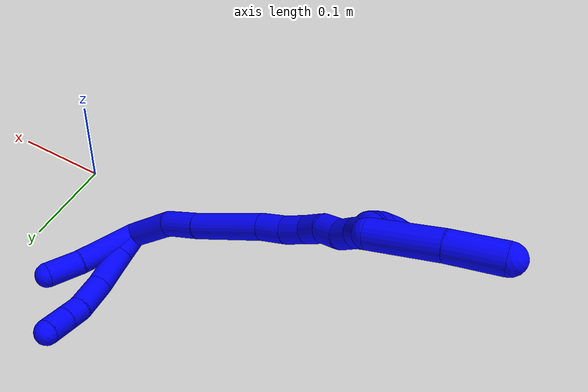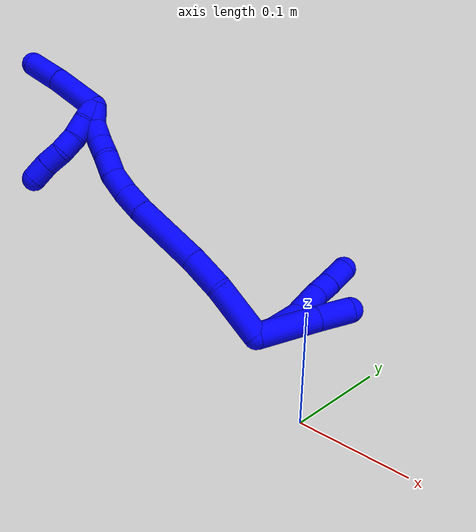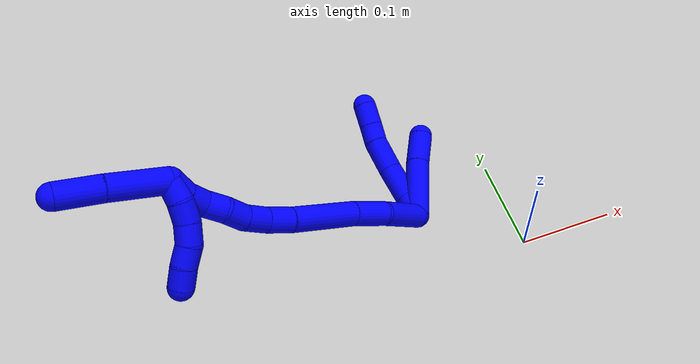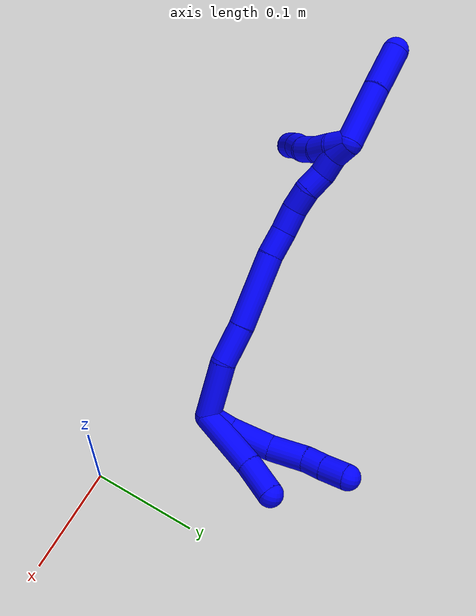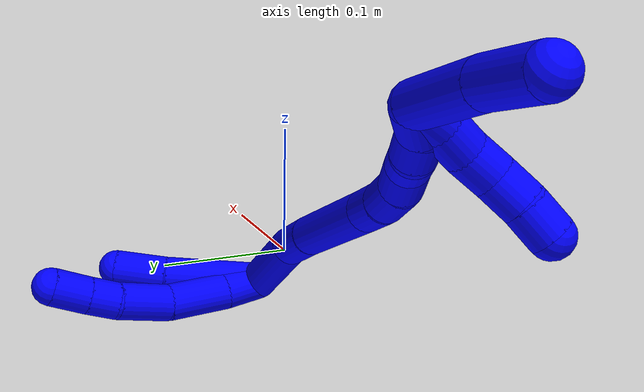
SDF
<sdf version="1.7">
 <world name="default">
  <model name="1">
   <static>0</static>
   <link name="1">
    <collision name="collision-cylinder-e_1_2_8">
     <pose>0.004239 0.011762 -0.002094 -1.74697 0.340959 -0.405361</pose>
     <geometry><cylinder><radius>0.0125</radius><length>0.025354</length></cylinder></geometry>
     <surface>
      <friction><ode><mu>1.16</mu><mu2>1.16</mu2><slip1>0</slip1><slip2>0</slip2></ode></friction>
      <contact><ode><kp>1e+06</kp><kd>1</kd><max_vel>0</max_vel><min_depth>0.001</min_depth></ode></contact>
     </surface>
    </collision>
    <visual name="visual-cylinder-e_1_2_8">
     <pose>0.004239 0.011762 -0.002094 -1.74697 0.340959 -0.405361</pose>
     <geometry><cylinder><radius>0.0125</radius><length>0.025354</length></cylinder></geometry>
     <material><ambient>0 0 1 1</ambient></material>
    </visual>
    <collision name="collision-cylinder-e_2_8_9">
     <pose>0.016435 0.043229 -0.004379 -1.58053 0.383754 -0.387415</pose>
     <geometry><cylinder><radius>0.0125</radius><length>0.042502</length></cylinder></geometry>
     <surface>
      <friction><ode><mu>1.16</mu><mu2>1.16</mu2><slip1>0</slip1><slip2>0</slip2></ode></friction>
      <contact><ode><kp>1e+06</kp><kd>1</kd><max_vel>0</max_vel><min_depth>0.001</min_depth></ode></contact>
     </surface>
    </collision>
    <visual name="visual-cylinder-e_2_8_9">
     <pose>0.016435 0.043229 -0.004379 -1.58053 0.383754 -0.387415</pose>
     <geometry><cylinder><radius>0.0125</radius><length>0.042502</length></cylinder></geometry>
     <material><ambient>0 0 1 1</ambient></material>
    </visual>
    <collision name="collision-cylinder-e_3_9_10">
     <pose>0.033536 0.078565 -0.001085 -1.35133 0.518812 -0.419175</pose>
     <geometry><cylinder><radius>0.0125</radius><length>0.036885</length></cylinder></geometry>
     <surface>
      <friction><ode><mu>1.16</mu><mu2>1.16</mu2><slip1>0</slip1><slip2>0</slip2></ode></friction>
      <contact><ode><kp>1e+06</kp><kd>1</kd><max_vel>0</max_vel><min_depth>0.001</min_depth></ode></contact>
     </surface>
    </collision>
    <visual name="visual-cylinder-e_3_9_10">
     <pose>0.033536 0.078565 -0.001085 -1.35133 0.518812 -0.419175</pose>
     <geometry><cylinder><radius>0.0125</radius><length>0.036885</length></cylinder></geometry>
     <material><ambient>0 0 1 1</ambient></material>
    </visual>
    <collision name="collision-cylinder-e_4_10_11">
     <pose>0.049275 0.101596 0.003753 -1.39026 0.719802 -0.608184</pose>
     <geometry><cylinder><radius>0.0125</radius><length>0.020007</length></cylinder></geometry>
     <surface>
      <friction><ode><mu>1.16</mu><mu2>1.16</mu2><slip1>0</slip1><slip2>0</slip2></ode></friction>
      <contact><ode><kp>1e+06</kp><kd>1</kd><max_vel>0</max_vel><min_depth>0.001</min_depth></ode></contact>
     </surface>
    </collision>
    <visual name="visual-cylinder-e_4_10_11">
     <pose>0.049275 0.101596 0.003753 -1.39026 0.719802 -0.608184</pose>
     <geometry><cylinder><radius>0.0125</radius><length>0.020007</length></cylinder></geometry>
     <material><ambient>0 0 1 1</ambient></material>
    </visual>
    <collision name="collision-cylinder-e_5_11_6">
     <pose>0.06421 0.118144 0.007584 -1.306 0.721584 -0.561968</pose>
     <geometry><cylinder><radius>0.0125</radius><length>0.025252</length></cylinder></geometry>
     <surface>
      <friction><ode><mu>1.16</mu><mu2>1.16</mu2><slip1>0</slip1><slip2>0</slip2></ode></friction>
      <contact><ode><kp>1e+06</kp><kd>1</kd><max_vel>0</max_vel><min_depth>0.001</min_depth></ode></contact>
     </surface>
    </collision>
    <visual name="visual-cylinder-e_5_11_6">
     <pose>0.06421 0.118144 0.007584 -1.306 0.721584 -0.561968</pose>
     <geometry><cylinder><radius>0.0125</radius><length>0.025252</length></cylinder></geometry>
     <material><ambient>0 0 1 1</ambient></material>
    </visual>
    <collision name="collision-cylinder-e_1_2_12">
     <pose>0.022543 0.021616 -0.007976 -1.92428 0.774484 -1.05893</pose>
     <geometry><cylinder><radius>0.0125</radius><length>0.06447</length></cylinder></geometry>
     <surface>
      <friction><ode><mu>1.16</mu><mu2>1.16</mu2><slip1>0</slip1><slip2>0</slip2></ode></friction>
      <contact><ode><kp>1e+06</kp><kd>1</kd><max_vel>0</max_vel><min_depth>0.001</min_depth></ode></contact>
     </surface>
    </collision>
    <visual name="visual-cylinder-e_1_2_12">
     <pose>0.022543 0.021616 -0.007976 -1.92428 0.774484 -1.05893</pose>
     <geometry><cylinder><radius>0.0125</radius><length>0.06447</length></cylinder></geometry>
     <material><ambient>0 0 1 1</ambient></material>
    </visual>
    <collision name="collision-cylinder-e_2_12_5">
     <pose>0.05853 0.053793 -0.020786 -2.00008 0.858298 -1.23842</pose>
     <geometry><cylinder><radius>0.0125</radius><length>0.03553</length></cylinder></geometry>
     <surface>
      <friction><ode><mu>1.16</mu><mu2>1.16</mu2><slip1>0</slip1><slip2>0</slip2></ode></friction>
      <contact><ode><kp>1e+06</kp><kd>1</kd><max_vel>0</max_vel><min_depth>0.001</min_depth></ode></contact>
     </surface>
    </collision>
    <visual name="visual-cylinder-e_2_12_5">
     <pose>0.05853 0.053793 -0.020786 -2.00008 0.858298 -1.23842</pose>
     <geometry><cylinder><radius>0.0125</radius><length>0.03553</length></cylinder></geometry>
     <material><ambient>0 0 1 1</ambient></material>
    </visual>
    <collision name="collision-cylinder-e_1_2_13">
     <pose>-0.003283 -0.000558 0.028062 0.019872 -0.116432 -0.001158</pose>
     <geometry><cylinder><radius>0.0125</radius><length>0.056517</length></cylinder></geometry>
     <surface>
      <friction><ode><mu>1.16</mu><mu2>1.16</mu2><slip1>0</slip1><slip2>0</slip2></ode></friction>
      <contact><ode><kp>1e+06</kp><kd>1</kd><max_vel>0</max_vel><min_depth>0.001</min_depth></ode></contact>
     </surface>
    </collision>
    <visual name="visual-cylinder-e_1_2_13">
     <pose>-0.003283 -0.000558 0.028062 0.019872 -0.116432 -0.001158</pose>
     <geometry><cylinder><radius>0.0125</radius><length>0.056517</length></cylinder></geometry>
     <material><ambient>0 0 1 1</ambient></material>
    </visual>
    <collision name="collision-cylinder-e_2_13_14">
     <pose>-0.011938 0.002782 0.074077 -0.213772 -0.284503 0.030731</pose>
     <geometry><cylinder><radius>0.0125</radius><length>0.038283</length></cylinder></geometry>
     <surface>
      <friction><ode><mu>1.16</mu><mu2>1.16</mu2><slip1>0</slip1><slip2>0</slip2></ode></friction>
      <contact><ode><kp>1e+06</kp><kd>1</kd><max_vel>0</max_vel><min_depth>0.001</min_depth></ode></contact>
     </surface>
    </collision>
    <visual name="visual-cylinder-e_2_13_14">
     <pose>-0.011938 0.002782 0.074077 -0.213772 -0.284503 0.030731</pose>
     <geometry><cylinder><radius>0.0125</radius><length>0.038283</length></cylinder></geometry>
     <material><ambient>0 0 1 1</ambient></material>
    </visual>
    <collision name="collision-cylinder-e_3_14_15">
     <pose>-0.029194 0.011231 0.126131 -0.13267 -0.332585 0.022299</pose>
     <geometry><cylinder><radius>0.0125</radius><length>0.072794</length></cylinder></geometry>
     <surface>
      <friction><ode><mu>1.16</mu><mu2>1.16</mu2><slip1>0</slip1><slip2>0</slip2></ode></friction>
      <contact><ode><kp>1e+06</kp><kd>1</kd><max_vel>0</max_vel><min_depth>0.001</min_depth></ode></contact>
     </surface>
    </collision>
    <visual name="visual-cylinder-e_3_14_15">
     <pose>-0.029194 0.011231 0.126131 -0.13267 -0.332585 0.022299</pose>
     <geometry><cylinder><radius>0.0125</radius><length>0.072794</length></cylinder></geometry>
     <material><ambient>0 0 1 1</ambient></material>
    </visual>
    <collision name="collision-cylinder-e_4_15_16">
     <pose>-0.044827 0.018952 0.172315 -0.256592 -0.291621 0.037885</pose>
     <geometry><cylinder><radius>0.0125</radius><length>0.026087</length></cylinder></geometry>
     <surface>
      <friction><ode><mu>1.16</mu><mu2>1.16</mu2><slip1>0</slip1><slip2>0</slip2></ode></friction>
      <contact><ode><kp>1e+06</kp><kd>1</kd><max_vel>0</max_vel><min_depth>0.001</min_depth></ode></contact>
     </surface>
    </collision>
    <visual name="visual-cylinder-e_4_15_16">
     <pose>-0.044827 0.018952 0.172315 -0.256592 -0.291621 0.037885</pose>
     <geometry><cylinder><radius>0.0125</radius><length>0.026087</length></cylinder></geometry>
     <material><ambient>0 0 1 1</ambient></material>
    </visual>
    <collision name="collision-cylinder-e_5_16_17">
     <pose>-0.050407 0.024088 0.195935 -0.168768 -0.155114 0.013146</pose>
     <geometry><cylinder><radius>0.0125</radius><length>0.023689</length></cylinder></geometry>
     <surface>
      <friction><ode><mu>1.16</mu><mu2>1.16</mu2><slip1>0</slip1><slip2>0</slip2></ode></friction>
      <contact><ode><kp>1e+06</kp><kd>1</kd><max_vel>0</max_vel><min_depth>0.001</min_depth></ode></contact>
     </surface>
    </collision>
    <visual name="visual-cylinder-e_5_16_17">
     <pose>-0.050407 0.024088 0.195935 -0.168768 -0.155114 0.013146</pose>
     <geometry><cylinder><radius>0.0125</radius><length>0.023689</length></cylinder></geometry>
     <material><ambient>0 0 1 1</ambient></material>
    </visual>
    <collision name="collision-cylinder-e_6_17_18">
     <pose>-0.05132 0.028536 0.218058 -0.230262 0.08415 -0.009737</pose>
     <geometry><cylinder><radius>0.0125</radius><length>0.021826</length></cylinder></geometry>
     <surface>
      <friction><ode><mu>1.16</mu><mu2>1.16</mu2><slip1>0</slip1><slip2>0</slip2></ode></friction>
      <contact><ode><kp>1e+06</kp><kd>1</kd><max_vel>0</max_vel><min_depth>0.001</min_depth></ode></contact>
     </surface>
    </collision>
    <visual name="visual-cylinder-e_6_17_18">
     <pose>-0.05132 0.028536 0.218058 -0.230262 0.08415 -0.009737</pose>
     <geometry><cylinder><radius>0.0125</radius><length>0.021826</length></cylinder></geometry>
     <material><ambient>0 0 1 1</ambient></material>
    </visual>
    <collision name="collision-cylinder-e_7_18_19">
     <pose>-0.051288 0.035727 0.2378 -0.475183 -0.085799 0.02079</pose>
     <geometry><cylinder><radius>0.0125</radius><length>0.020665</length></cylinder></geometry>
     <surface>
      <friction><ode><mu>1.16</mu><mu2>1.16</mu2><slip1>0</slip1><slip2>0</slip2></ode></friction>
      <contact><ode><kp>1e+06</kp><kd>1</kd><max_vel>0</max_vel><min_depth>0.001</min_depth></ode></contact>
     </surface>
    </collision>
    <visual name="visual-cylinder-e_7_18_19">
     <pose>-0.051288 0.035727 0.2378 -0.475183 -0.085799 0.02079</pose>
     <geometry><cylinder><radius>0.0125</radius><length>0.020665</length></cylinder></geometry>
     <material><ambient>0 0 1 1</ambient></material>
    </visual>
    <collision name="collision-cylinder-e_8_19_20">
     <pose>-0.051 0.042459 0.256703 -0.204518 0.117341 -0.012055</pose>
     <geometry><cylinder><radius>0.0125</radius><length>0.020052</length></cylinder></geometry>
     <surface>
      <friction><ode><mu>1.16</mu><mu2>1.16</mu2><slip1>0</slip1><slip2>0</slip2></ode></friction>
      <contact><ode><kp>1e+06</kp><kd>1</kd><max_vel>0</max_vel><min_depth>0.001</min_depth></ode></contact>
     </surface>
    </collision>
    <visual name="visual-cylinder-e_8_19_20">
     <pose>-0.051 0.042459 0.256703 -0.204518 0.117341 -0.012055</pose>
     <geometry><cylinder><radius>0.0125</radius><length>0.020052</length></cylinder></geometry>
     <material><ambient>0 0 1 1</ambient></material>
    </visual>
    <collision name="collision-cylinder-e_9_20_1">
     <pose>-0.046013 0.048342 0.274904 -0.428438 0.38938 -0.085747</pose>
     <geometry><cylinder><radius>0.0125</radius><length>0.020087</length></cylinder></geometry>
     <surface>
      <friction><ode><mu>1.16</mu><mu2>1.16</mu2><slip1>0</slip1><slip2>0</slip2></ode></friction>
      <contact><ode><kp>1e+06</kp><kd>1</kd><max_vel>0</max_vel><min_depth>0.001</min_depth></ode></contact>
     </surface>
    </collision>
    <visual name="visual-cylinder-e_9_20_1">
     <pose>-0.046013 0.048342 0.274904 -0.428438 0.38938 -0.085747</pose>
     <geometry><cylinder><radius>0.0125</radius><length>0.020087</length></cylinder></geometry>
     <material><ambient>0 0 1 1</ambient></material>
    </visual>
    <collision name="collision-cylinder-e_1_1_21">
     <pose>-0.048289 0.045934 0.278494 2.23058 -0.654623 -1.21216</pose>
     <geometry><cylinder><radius>0.0125</radius><length>0.02</length></cylinder></geometry>
     <surface>
      <friction><ode><mu>1.16</mu><mu2>1.16</mu2><slip1>0</slip1><slip2>0</slip2></ode></friction>
      <contact><ode><kp>1e+06</kp><kd>1</kd><max_vel>0</max_vel><min_depth>0.001</min_depth></ode></contact>
     </surface>
    </collision>
    <visual name="visual-cylinder-e_1_1_21">
     <pose>-0.048289 0.045934 0.278494 2.23058 -0.654623 -1.21216</pose>
     <geometry><cylinder><radius>0.0125</radius><length>0.02</length></cylinder></geometry>
     <material><ambient>0 0 1 1</ambient></material>
    </visual>
    <collision name="collision-cylinder-e_2_21_22">
     <pose>-0.061787 0.035141 0.268669 2.40224 -0.834455 -1.70484</pose>
     <geometry><cylinder><radius>0.0125</radius><length>0.02</length></cylinder></geometry>
     <surface>
      <friction><ode><mu>1.16</mu><mu2>1.16</mu2><slip1>0</slip1><slip2>0</slip2></ode></friction>
      <contact><ode><kp>1e+06</kp><kd>1</kd><max_vel>0</max_vel><min_depth>0.001</min_depth></ode></contact>
     </surface>
    </collision>
    <visual name="visual-cylinder-e_2_21_22">
     <pose>-0.061787 0.035141 0.268669 2.40224 -0.834455 -1.70484</pose>
     <geometry><cylinder><radius>0.0125</radius><length>0.02</length></cylinder></geometry>
     <material><ambient>0 0 1 1</ambient></material>
    </visual>
    <collision name="collision-cylinder-e_3_22_23">
     <pose>-0.077812 0.026596 0.260607 2.2277 -1.03833 -1.72065</pose>
     <geometry><cylinder><radius>0.0125</radius><length>0.02</length></cylinder></geometry>
     <surface>
      <friction><ode><mu>1.16</mu><mu2>1.16</mu2><slip1>0</slip1><slip2>0</slip2></ode></friction>
      <contact><ode><kp>1e+06</kp><kd>1</kd><max_vel>0</max_vel><min_depth>0.001</min_depth></ode></contact>
     </surface>
    </collision>
    <visual name="visual-cylinder-e_3_22_23">
     <pose>-0.077812 0.026596 0.260607 2.2277 -1.03833 -1.72065</pose>
     <geometry><cylinder><radius>0.0125</radius><length>0.02</length></cylinder></geometry>
     <material><ambient>0 0 1 1</ambient></material>
    </visual>
    <collision name="collision-cylinder-e_4_23_24">
     <pose>-0.096212 0.020871 0.256346 2.16879 -1.36305 -1.98624</pose>
     <geometry><cylinder><radius>0.0125</radius><length>0.02</length></cylinder></geometry>
     <surface>
      <friction><ode><mu>1.16</mu><mu2>1.16</mu2><slip1>0</slip1><slip2>0</slip2></ode></friction>
      <contact><ode><kp>1e+06</kp><kd>1</kd><max_vel>0</max_vel><min_depth>0.001</min_depth></ode></contact>
     </surface>
    </collision>
    <visual name="visual-cylinder-e_4_23_24">
     <pose>-0.096212 0.020871 0.256346 2.16879 -1.36305 -1.98624</pose>
     <geometry><cylinder><radius>0.0125</radius><length>0.02</length></cylinder></geometry>
     <material><ambient>0 0 1 1</ambient></material>
    </visual>
    <collision name="collision-cylinder-e_5_24_4">
     <pose>-0.115532 0.017561 0.252631 2.5804 -1.26441 -2.3919</pose>
     <geometry><cylinder><radius>0.0125</radius><length>0.02</length></cylinder></geometry>
     <surface>
      <friction><ode><mu>1.16</mu><mu2>1.16</mu2><slip1>0</slip1><slip2>0</slip2></ode></friction>
      <contact><ode><kp>1e+06</kp><kd>1</kd><max_vel>0</max_vel><min_depth>0.001</min_depth></ode></contact>
     </surface>
    </collision>
    <visual name="visual-cylinder-e_5_24_4">
     <pose>-0.115532 0.017561 0.252631 2.5804 -1.26441 -2.3919</pose>
     <geometry><cylinder><radius>0.0125</radius><length>0.02</length></cylinder></geometry>
     <material><ambient>0 0 1 1</ambient></material>
    </visual>
    <collision name="collision-cylinder-e_1_1_25">
     <pose>-0.054392 0.05852 0.308636 -0.244922 -0.437624 0.054724</pose>
     <geometry><cylinder><radius>0.0125</radius><length>0.057538</length></cylinder></geometry>
     <surface>
      <friction><ode><mu>1.16</mu><mu2>1.16</mu2><slip1>0</slip1><slip2>0</slip2></ode></friction>
      <contact><ode><kp>1e+06</kp><kd>1</kd><max_vel>0</max_vel><min_depth>0.001</min_depth></ode></contact>
     </surface>
    </collision>
    <visual name="visual-cylinder-e_1_1_25">
     <pose>-0.054392 0.05852 0.308636 -0.244922 -0.437624 0.054724</pose>
     <geometry><cylinder><radius>0.0125</radius><length>0.057538</length></cylinder></geometry>
     <material><ambient>0 0 1 1</ambient></material>
    </visual>
    <collision name="collision-cylinder-e_2_25_3">
     <pose>-0.076765 0.07008 0.351795 -0.285177 -0.500086 0.073295</pose>
     <geometry><cylinder><radius>0.0125</radius><length>0.042462</length></cylinder></geometry>
     <surface>
      <friction><ode><mu>1.16</mu><mu2>1.16</mu2><slip1>0</slip1><slip2>0</slip2></ode></friction>
      <contact><ode><kp>1e+06</kp><kd>1</kd><max_vel>0</max_vel><min_depth>0.001</min_depth></ode></contact>
     </surface>
    </collision>
    <visual name="visual-cylinder-e_2_25_3">
     <pose>-0.076765 0.07008 0.351795 -0.285177 -0.500086 0.073295</pose>
     <geometry><cylinder><radius>0.0125</radius><length>0.042462</length></cylinder></geometry>
     <material><ambient>0 0 1 1</ambient></material>
    </visual>
    <collision name="collision-sphere-3">
     <pose>-0.086945 0.075322 0.369674 0 -0 0</pose>
     <geometry><sphere><radius>0.0125</radius></sphere></geometry>
     <surface>
      <friction><ode><mu>1.16</mu><mu2>1.16</mu2><slip1>0</slip1><slip2>0</slip2></ode></friction>
      <contact><ode><kp>1e+06</kp><kd>1</kd><max_vel>0</max_vel><min_depth>0.001</min_depth></ode></contact>
     </surface>
    </collision>
    <visual name="visual-sphere-3">
     <pose>-0.086945 0.075322 0.369674 0 -0 0</pose>
     <geometry><sphere><radius>0.0125</radius></sphere></geometry>
     <material><ambient>0 0 1 1</ambient></material>
    </visual>
    <collision name="collision-sphere-25">
     <pose>-0.066584 0.064839 0.333917 0 -0 0</pose>
     <geometry><sphere><radius>0.0125</radius></sphere></geometry>
     <surface>
      <friction><ode><mu>1.16</mu><mu2>1.16</mu2><slip1>0</slip1><slip2>0</slip2></ode></friction>
      <contact><ode><kp>1e+06</kp><kd>1</kd><max_vel>0</max_vel><min_depth>0.001</min_depth></ode></contact>
     </surface>
    </collision>
    <visual name="visual-sphere-25">
     <pose>-0.066584 0.064839 0.333917 0 -0 0</pose>
     <geometry><sphere><radius>0.0125</radius></sphere></geometry>
     <material><ambient>0 0 1 1</ambient></material>
    </visual>
    <collision name="collision-sphere-4">
     <pose>-0.125066 0.015956 0.250077 0 -0 0</pose>
     <geometry><sphere><radius>0.0125</radius></sphere></geometry>
     <surface>
      <friction><ode><mu>1.16</mu><mu2>1.16</mu2><slip1>0</slip1><slip2>0</slip2></ode></friction>
      <contact><ode><kp>1e+06</kp><kd>1</kd><max_vel>0</max_vel><min_depth>0.001</min_depth></ode></contact>
     </surface>
    </collision>
    <visual name="visual-sphere-4">
     <pose>-0.125066 0.015956 0.250077 0 -0 0</pose>
     <geometry><sphere><radius>0.0125</radius></sphere></geometry>
     <material><ambient>0 0 1 1</ambient></material>
    </visual>
    <collision name="collision-sphere-24">
     <pose>-0.105997 0.019166 0.255184 0 -0 0</pose>
     <geometry><sphere><radius>0.0125</radius></sphere></geometry>
     <surface>
      <friction><ode><mu>1.16</mu><mu2>1.16</mu2><slip1>0</slip1><slip2>0</slip2></ode></friction>
      <contact><ode><kp>1e+06</kp><kd>1</kd><max_vel>0</max_vel><min_depth>0.001</min_depth></ode></contact>
     </surface>
    </collision>
    <visual name="visual-sphere-24">
     <pose>-0.105997 0.019166 0.255184 0 -0 0</pose>
     <geometry><sphere><radius>0.0125</radius></sphere></geometry>
     <material><ambient>0 0 1 1</ambient></material>
    </visual>
    <collision name="collision-sphere-23">
     <pose>-0.086427 0.022576 0.257507 0 -0 0</pose>
     <geometry><sphere><radius>0.0125</radius></sphere></geometry>
     <surface>
      <friction><ode><mu>1.16</mu><mu2>1.16</mu2><slip1>0</slip1><slip2>0</slip2></ode></friction>
      <contact><ode><kp>1e+06</kp><kd>1</kd><max_vel>0</max_vel><min_depth>0.001</min_depth></ode></contact>
     </surface>
    </collision>
    <visual name="visual-sphere-23">
     <pose>-0.086427 0.022576 0.257507 0 -0 0</pose>
     <geometry><sphere><radius>0.0125</radius></sphere></geometry>
     <material><ambient>0 0 1 1</ambient></material>
    </visual>
    <collision name="collision-sphere-22">
     <pose>-0.069196 0.030616 0.263707 0 -0 0</pose>
     <geometry><sphere><radius>0.0125</radius></sphere></geometry>
     <surface>
      <friction><ode><mu>1.16</mu><mu2>1.16</mu2><slip1>0</slip1><slip2>0</slip2></ode></friction>
      <contact><ode><kp>1e+06</kp><kd>1</kd><max_vel>0</max_vel><min_depth>0.001</min_depth></ode></contact>
     </surface>
    </collision>
    <visual name="visual-sphere-22">
     <pose>-0.069196 0.030616 0.263707 0 -0 0</pose>
     <geometry><sphere><radius>0.0125</radius></sphere></geometry>
     <material><ambient>0 0 1 1</ambient></material>
    </visual>
    <collision name="collision-sphere-21">
     <pose>-0.054378 0.039666 0.273632 0 -0 0</pose>
     <geometry><sphere><radius>0.0125</radius></sphere></geometry>
     <surface>
      <friction><ode><mu>1.16</mu><mu2>1.16</mu2><slip1>0</slip1><slip2>0</slip2></ode></friction>
      <contact><ode><kp>1e+06</kp><kd>1</kd><max_vel>0</max_vel><min_depth>0.001</min_depth></ode></contact>
     </surface>
    </collision>
    <visual name="visual-sphere-21">
     <pose>-0.054378 0.039666 0.273632 0 -0 0</pose>
     <geometry><sphere><radius>0.0125</radius></sphere></geometry>
     <material><ambient>0 0 1 1</ambient></material>
    </visual>
    <collision name="collision-sphere-1">
     <pose>-0.0422 0.052202 0.283356 0 -0 0</pose>
     <geometry><sphere><radius>0.0125</radius></sphere></geometry>
     <surface>
      <friction><ode><mu>1.16</mu><mu2>1.16</mu2><slip1>0</slip1><slip2>0</slip2></ode></friction>
      <contact><ode><kp>1e+06</kp><kd>1</kd><max_vel>0</max_vel><min_depth>0.001</min_depth></ode></contact>
     </surface>
    </collision>
    <visual name="visual-sphere-1">
     <pose>-0.0422 0.052202 0.283356 0 -0 0</pose>
     <geometry><sphere><radius>0.0125</radius></sphere></geometry>
     <material><ambient>0 0 1 1</ambient></material>
    </visual>
    <collision name="collision-sphere-6">
     <pose>0.072551 0.127293 0.010065 0 -0 0</pose>
     <geometry><sphere><radius>0.0125</radius></sphere></geometry>
     <surface>
      <friction><ode><mu>1.16</mu><mu2>1.16</mu2><slip1>0</slip1><slip2>0</slip2></ode></friction>
      <contact><ode><kp>1e+06</kp><kd>1</kd><max_vel>0</max_vel><min_depth>0.001</min_depth></ode></contact>
     </surface>
    </collision>
    <visual name="visual-sphere-6">
     <pose>0.072551 0.127293 0.010065 0 -0 0</pose>
     <geometry><sphere><radius>0.0125</radius></sphere></geometry>
     <material><ambient>0 0 1 1</ambient></material>
    </visual>
    <collision name="collision-sphere-11">
     <pose>0.05587 0.108996 0.005103 0 -0 0</pose>
     <geometry><sphere><radius>0.0125</radius></sphere></geometry>
     <surface>
      <friction><ode><mu>1.16</mu><mu2>1.16</mu2><slip1>0</slip1><slip2>0</slip2></ode></friction>
      <contact><ode><kp>1e+06</kp><kd>1</kd><max_vel>0</max_vel><min_depth>0.001</min_depth></ode></contact>
     </surface>
    </collision>
    <visual name="visual-sphere-11">
     <pose>0.05587 0.108996 0.005103 0 -0 0</pose>
     <geometry><sphere><radius>0.0125</radius></sphere></geometry>
     <material><ambient>0 0 1 1</ambient></material>
    </visual>
    <collision name="collision-sphere-10">
     <pose>0.04268 0.094196 0.002402 0 -0 0</pose>
     <geometry><sphere><radius>0.0125</radius></sphere></geometry>
     <surface>
      <friction><ode><mu>1.16</mu><mu2>1.16</mu2><slip1>0</slip1><slip2>0</slip2></ode></friction>
      <contact><ode><kp>1e+06</kp><kd>1</kd><max_vel>0</max_vel><min_depth>0.001</min_depth></ode></contact>
     </surface>
    </collision>
    <visual name="visual-sphere-10">
     <pose>0.04268 0.094196 0.002402 0 -0 0</pose>
     <geometry><sphere><radius>0.0125</radius></sphere></geometry>
     <material><ambient>0 0 1 1</ambient></material>
    </visual>
    <collision name="collision-sphere-9">
     <pose>0.024391 0.062933 -0.004571 0 -0 0</pose>
     <geometry><sphere><radius>0.0125</radius></sphere></geometry>
     <surface>
      <friction><ode><mu>1.16</mu><mu2>1.16</mu2><slip1>0</slip1><slip2>0</slip2></ode></friction>
      <contact><ode><kp>1e+06</kp><kd>1</kd><max_vel>0</max_vel><min_depth>0.001</min_depth></ode></contact>
     </surface>
    </collision>
    <visual name="visual-sphere-9">
     <pose>0.024391 0.062933 -0.004571 0 -0 0</pose>
     <geometry><sphere><radius>0.0125</radius></sphere></geometry>
     <material><ambient>0 0 1 1</ambient></material>
    </visual>
    <collision name="collision-sphere-2">
     <geometry><sphere><radius>0.0125</radius></sphere></geometry>
     <surface>
      <friction><ode><mu>1.16</mu><mu2>1.16</mu2><slip1>0</slip1><slip2>0</slip2></ode></friction>
      <contact><ode><kp>1e+06</kp><kd>1</kd><max_vel>0</max_vel><min_depth>0.001</min_depth></ode></contact>
     </surface>
    </collision>
    <visual name="visual-sphere-2">
     <geometry><sphere><radius>0.0125</radius></sphere></geometry>
     <material><ambient>0 0 1 1</ambient></material>
    </visual>
    <collision name="collision-sphere-19">
     <pose>-0.052173 0.040437 0.246954 0 -0 0</pose>
     <geometry><sphere><radius>0.0125</radius></sphere></geometry>
     <surface>
      <friction><ode><mu>1.16</mu><mu2>1.16</mu2><slip1>0</slip1><slip2>0</slip2></ode></friction>
      <contact><ode><kp>1e+06</kp><kd>1</kd><max_vel>0</max_vel><min_depth>0.001</min_depth></ode></contact>
     </surface>
    </collision>
    <visual name="visual-sphere-19">
     <pose>-0.052173 0.040437 0.246954 0 -0 0</pose>
     <geometry><sphere><radius>0.0125</radius></sphere></geometry>
     <material><ambient>0 0 1 1</ambient></material>
    </visual>
    <collision name="collision-sphere-8">
     <pose>0.008478 0.023524 -0.004188 0 -0 0</pose>
     <geometry><sphere><radius>0.0125</radius></sphere></geometry>
     <surface>
      <friction><ode><mu>1.16</mu><mu2>1.16</mu2><slip1>0</slip1><slip2>0</slip2></ode></friction>
      <contact><ode><kp>1e+06</kp><kd>1</kd><max_vel>0</max_vel><min_depth>0.001</min_depth></ode></contact>
     </surface>
    </collision>
    <visual name="visual-sphere-8">
     <pose>0.008478 0.023524 -0.004188 0 -0 0</pose>
     <geometry><sphere><radius>0.0125</radius></sphere></geometry>
     <material><ambient>0 0 1 1</ambient></material>
    </visual>
    <collision name="collision-sphere-12">
     <pose>0.045087 0.043233 -0.015952 0 -0 0</pose>
     <geometry><sphere><radius>0.0125</radius></sphere></geometry>
     <surface>
      <friction><ode><mu>1.16</mu><mu2>1.16</mu2><slip1>0</slip1><slip2>0</slip2></ode></friction>
      <contact><ode><kp>1e+06</kp><kd>1</kd><max_vel>0</max_vel><min_depth>0.001</min_depth></ode></contact>
     </surface>
    </collision>
    <visual name="visual-sphere-12">
     <pose>0.045087 0.043233 -0.015952 0 -0 0</pose>
     <geometry><sphere><radius>0.0125</radius></sphere></geometry>
     <material><ambient>0 0 1 1</ambient></material>
    </visual>
    <collision name="collision-sphere-5">
     <pose>0.071974 0.064352 -0.02562 0 -0 0</pose>
     <geometry><sphere><radius>0.0125</radius></sphere></geometry>
     <surface>
      <friction><ode><mu>1.16</mu><mu2>1.16</mu2><slip1>0</slip1><slip2>0</slip2></ode></friction>
      <contact><ode><kp>1e+06</kp><kd>1</kd><max_vel>0</max_vel><min_depth>0.001</min_depth></ode></contact>
     </surface>
    </collision>
    <visual name="visual-sphere-5">
     <pose>0.071974 0.064352 -0.02562 0 -0 0</pose>
     <geometry><sphere><radius>0.0125</radius></sphere></geometry>
     <material><ambient>0 0 1 1</ambient></material>
    </visual>
    <collision name="collision-sphere-13">
     <pose>-0.006566 -0.001115 0.056123 0 -0 0</pose>
     <geometry><sphere><radius>0.0125</radius></sphere></geometry>
     <surface>
      <friction><ode><mu>1.16</mu><mu2>1.16</mu2><slip1>0</slip1><slip2>0</slip2></ode></friction>
      <contact><ode><kp>1e+06</kp><kd>1</kd><max_vel>0</max_vel><min_depth>0.001</min_depth></ode></contact>
     </surface>
    </collision>
    <visual name="visual-sphere-13">
     <pose>-0.006566 -0.001115 0.056123 0 -0 0</pose>
     <geometry><sphere><radius>0.0125</radius></sphere></geometry>
     <material><ambient>0 0 1 1</ambient></material>
    </visual>
    <collision name="collision-sphere-14">
     <pose>-0.017311 0.00668 0.092031 0 -0 0</pose>
     <geometry><sphere><radius>0.0125</radius></sphere></geometry>
     <surface>
      <friction><ode><mu>1.16</mu><mu2>1.16</mu2><slip1>0</slip1><slip2>0</slip2></ode></friction>
      <contact><ode><kp>1e+06</kp><kd>1</kd><max_vel>0</max_vel><min_depth>0.001</min_depth></ode></contact>
     </surface>
    </collision>
    <visual name="visual-sphere-14">
     <pose>-0.017311 0.00668 0.092031 0 -0 0</pose>
     <geometry><sphere><radius>0.0125</radius></sphere></geometry>
     <material><ambient>0 0 1 1</ambient></material>
    </visual>
    <collision name="collision-sphere-15">
     <pose>-0.041077 0.015781 0.160231 0 -0 0</pose>
     <geometry><sphere><radius>0.0125</radius></sphere></geometry>
     <surface>
      <friction><ode><mu>1.16</mu><mu2>1.16</mu2><slip1>0</slip1><slip2>0</slip2></ode></friction>
      <contact><ode><kp>1e+06</kp><kd>1</kd><max_vel>0</max_vel><min_depth>0.001</min_depth></ode></contact>
     </surface>
    </collision>
    <visual name="visual-sphere-15">
     <pose>-0.041077 0.015781 0.160231 0 -0 0</pose>
     <geometry><sphere><radius>0.0125</radius></sphere></geometry>
     <material><ambient>0 0 1 1</ambient></material>
    </visual>
    <collision name="collision-sphere-16">
     <pose>-0.048577 0.022122 0.184399 0 -0 0</pose>
     <geometry><sphere><radius>0.0125</radius></sphere></geometry>
     <surface>
      <friction><ode><mu>1.16</mu><mu2>1.16</mu2><slip1>0</slip1><slip2>0</slip2></ode></friction>
      <contact><ode><kp>1e+06</kp><kd>1</kd><max_vel>0</max_vel><min_depth>0.001</min_depth></ode></contact>
     </surface>
    </collision>
    <visual name="visual-sphere-16">
     <pose>-0.048577 0.022122 0.184399 0 -0 0</pose>
     <geometry><sphere><radius>0.0125</radius></sphere></geometry>
     <material><ambient>0 0 1 1</ambient></material>
    </visual>
    <collision name="collision-sphere-17">
     <pose>-0.052237 0.026054 0.207471 0 -0 0</pose>
     <geometry><sphere><radius>0.0125</radius></sphere></geometry>
     <surface>
      <friction><ode><mu>1.16</mu><mu2>1.16</mu2><slip1>0</slip1><slip2>0</slip2></ode></friction>
      <contact><ode><kp>1e+06</kp><kd>1</kd><max_vel>0</max_vel><min_depth>0.001</min_depth></ode></contact>
     </surface>
    </collision>
    <visual name="visual-sphere-17">
     <pose>-0.052237 0.026054 0.207471 0 -0 0</pose>
     <geometry><sphere><radius>0.0125</radius></sphere></geometry>
     <material><ambient>0 0 1 1</ambient></material>
    </visual>
    <collision name="collision-sphere-18">
     <pose>-0.050403 0.031017 0.228646 0 -0 0</pose>
     <geometry><sphere><radius>0.0125</radius></sphere></geometry>
     <surface>
      <friction><ode><mu>1.16</mu><mu2>1.16</mu2><slip1>0</slip1><slip2>0</slip2></ode></friction>
      <contact><ode><kp>1e+06</kp><kd>1</kd><max_vel>0</max_vel><min_depth>0.001</min_depth></ode></contact>
     </surface>
    </collision>
    <visual name="visual-sphere-18">
     <pose>-0.050403 0.031017 0.228646 0 -0 0</pose>
     <geometry><sphere><radius>0.0125</radius></sphere></geometry>
     <material><ambient>0 0 1 1</ambient></material>
    </visual>
    <collision name="collision-sphere-20">
     <pose>-0.049826 0.044481 0.266453 0 -0 0</pose>
     <geometry><sphere><radius>0.0125</radius></sphere></geometry>
     <surface>
      <friction><ode><mu>1.16</mu><mu2>1.16</mu2><slip1>0</slip1><slip2>0</slip2></ode></friction>
      <contact><ode><kp>1e+06</kp><kd>1</kd><max_vel>0</max_vel><min_depth>0.001</min_depth></ode></contact>
     </surface>
    </collision>
    <visual name="visual-sphere-20">
     <pose>-0.049826 0.044481 0.266453 0 -0 0</pose>
     <geometry><sphere><radius>0.0125</radius></sphere></geometry>
     <material><ambient>0 0 1 1</ambient></material>
    </visual>
    <inertial>
     <pose>-0.020609 0.037014 0.134465 0 -0 0</pose>
     <mass>0.75</mass>
     <inertia>
      <ixx>8.6e-05</ixx>
      <ixy>0</ixy>
      <ixz>0</ixz>
      <iyy>0.000108</iyy>
      <iyz>0</iyz>
      <izz>-2.1e-05</izz>
     </inertia>
    </inertial>
   </link>
   <pose>-0.098556 0.060342 0.017502 -0.339061 -0.657101 0.604953</pose>
  </model>
 </world>
</sdf>
